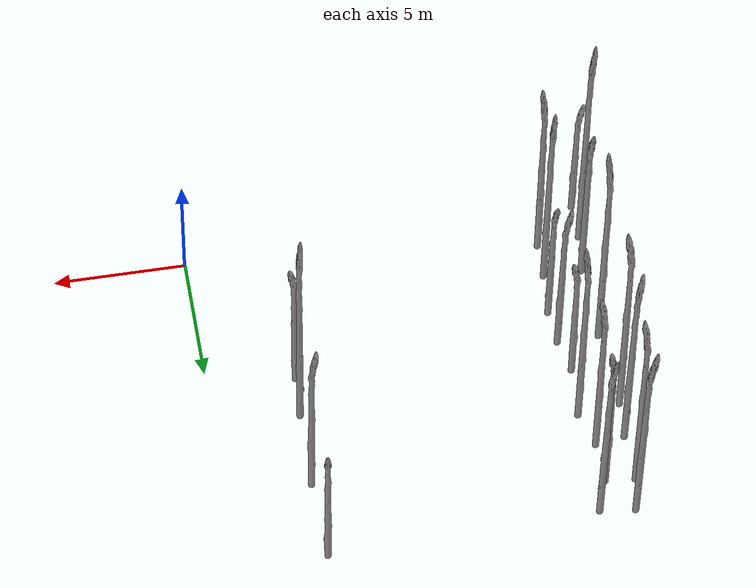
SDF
<sdf version="1.6">
 <world name="default">
  <model name="asparagus_43">
   <pose>-3.2419 5.9099 0 0 -0 0.706755</pose>
   <static>1</static>
   <link name="asparagus_43">
    <visual name="visual">
     <geometry>
      <mesh><uri>model://Asparagus/meshes/asparagus.obj</uri><scale>0.3 0.3 0.356486</scale></mesh>
     </geometry>
    </visual>
    <collision name="collision">
     <geometry>
      <mesh><uri>model://Asparagus/meshes/asparagus.obj</uri><scale>0.3 0.3 0.356486</scale></mesh>
     </geometry>
    </collision>
   </link>
  </model>
  <model name="asparagus_46">
   <pose>-3.25257 7.49353 0 0 -0 -1.967</pose>
   <static>1</static>
   <link name="asparagus_46">
    <visual name="visual">
     <geometry>
      <mesh><uri>model://Asparagus/meshes/asparagus.obj</uri><scale>0.3 0.3 0.529041</scale></mesh>
     </geometry>
    </visual>
    <collision name="collision">
     <geometry>
      <mesh><uri>model://Asparagus/meshes/asparagus.obj</uri><scale>0.3 0.3 0.529041</scale></mesh>
     </geometry>
    </collision>
   </link>
  </model>
  <model name="asparagus_52">
   <pose>-3.22845 10.5608 0 0 -0 -2.63449</pose>
   <static>1</static>
   <link name="asparagus_52">
    <visual name="visual">
     <geometry>
      <mesh><uri>model://Asparagus/meshes/asparagus.obj</uri><scale>0.3 0.3 0.416963</scale></mesh>
     </geometry>
    </visual>
    <collision name="collision">
     <geometry>
      <mesh><uri>model://Asparagus/meshes/asparagus.obj</uri><scale>0.3 0.3 0.416963</scale></mesh>
     </geometry>
    </collision>
   </link>
  </model>
  <model name="asparagus_58">
   <pose>-3.23287 13.7624 0 0 -0 1.40347</pose>
   <static>1</static>
   <link name="asparagus_58">
    <visual name="visual">
     <geometry>
      <mesh><uri>model://Asparagus/meshes/asparagus.obj</uri><scale>0.3 0.3 0.341846</scale></mesh>
     </geometry>
    </visual>
    <collision name="collision">
     <geometry>
      <mesh><uri>model://Asparagus/meshes/asparagus.obj</uri><scale>0.3 0.3 0.341846</scale></mesh>
     </geometry>
    </collision>
   </link>
  </model>
  <model name="asparagus_150">
   <pose>-15.0872 -0.25411 0 0 -0 -2.63357</pose>
   <static>1</static>
   <link name="asparagus_150">
    <visual name="visual">
     <geometry>
      <mesh><uri>model://Asparagus/meshes/asparagus.obj</uri><scale>0.3 0.3 0.308868</scale></mesh>
     </geometry>
    </visual>
    <collision name="collision">
     <geometry>
      <mesh><uri>model://Asparagus/meshes/asparagus.obj</uri><scale>0.3 0.3 0.308868</scale></mesh>
     </geometry>
    </collision>
   </link>
  </model>
  <model name="asparagus_153">
   <pose>-15.0503 1.22201 0 0 -0 -2.25983</pose>
   <static>1</static>
   <link name="asparagus_153">
    <visual name="visual">
     <geometry>
      <mesh><uri>model://Asparagus/meshes/asparagus.obj</uri><scale>0.3 0.3 0.56606</scale></mesh>
     </geometry>
    </visual>
    <collision name="collision">
     <geometry>
      <mesh><uri>model://Asparagus/meshes/asparagus.obj</uri><scale>0.3 0.3 0.56606</scale></mesh>
     </geometry>
    </collision>
   </link>
  </model>
  <model name="asparagus_156">
   <pose>-14.7927 2.90177 0 0 -0 1.74115</pose>
   <static>1</static>
   <link name="asparagus_156">
    <visual name="visual">
     <geometry>
      <mesh><uri>model://Asparagus/meshes/asparagus.obj</uri><scale>0.3 0.3 0.434392</scale></mesh>
     </geometry>
    </visual>
    <collision name="collision">
     <geometry>
      <mesh><uri>model://Asparagus/meshes/asparagus.obj</uri><scale>0.3 0.3 0.434392</scale></mesh>
     </geometry>
    </collision>
   </link>
  </model>
  <model name="asparagus_162">
   <pose>-14.8088 5.79075 0 0 -0 -1.02521</pose>
   <static>1</static>
   <link name="asparagus_162">
    <visual name="visual">
     <geometry>
      <mesh><uri>model://Asparagus/meshes/asparagus.obj</uri><scale>0.3 0.3 0.551133</scale></mesh>
     </geometry>
    </visual>
    <collision name="collision">
     <geometry>
      <mesh><uri>model://Asparagus/meshes/asparagus.obj</uri><scale>0.3 0.3 0.551133</scale></mesh>
     </geometry>
    </collision>
   </link>
  </model>
  <model name="asparagus_168">
   <pose>-14.9379 8.97547 0 0 -0 -0.105695</pose>
   <static>1</static>
   <link name="asparagus_168">
    <visual name="visual">
     <geometry>
      <mesh><uri>model://Asparagus/meshes/asparagus.obj</uri><scale>0.3 0.3 0.533711</scale></mesh>
     </geometry>
    </visual>
    <collision name="collision">
     <geometry>
      <mesh><uri>model://Asparagus/meshes/asparagus.obj</uri><scale>0.3 0.3 0.533711</scale></mesh>
     </geometry>
    </collision>
   </link>
  </model>
  <model name="asparagus_171">
   <pose>-14.9772 10.3811 0 0 -0 -2.39634</pose>
   <static>1</static>
   <link name="asparagus_171">
    <visual name="visual">
     <geometry>
      <mesh><uri>model://Asparagus/meshes/asparagus.obj</uri><scale>0.3 0.3 0.499651</scale></mesh>
     </geometry>
    </visual>
    <collision name="collision">
     <geometry>
      <mesh><uri>model://Asparagus/meshes/asparagus.obj</uri><scale>0.3 0.3 0.499651</scale></mesh>
     </geometry>
    </collision>
   </link>
  </model>
  <model name="asparagus_174">
   <pose>-14.8852 12.2614 0 0 -0 -0.722645</pose>
   <static>1</static>
   <link name="asparagus_174">
    <visual name="visual">
     <geometry>
      <mesh><uri>model://Asparagus/meshes/asparagus.obj</uri><scale>0.3 0.3 0.495336</scale></mesh>
     </geometry>
    </visual>
    <collision name="collision">
     <geometry>
      <mesh><uri>model://Asparagus/meshes/asparagus.obj</uri><scale>0.3 0.3 0.495336</scale></mesh>
     </geometry>
    </collision>
   </link>
  </model>
  <model name="asparagus_177">
   <pose>-14.7765 13.6336 0 0 -0 -3.06426</pose>
   <static>1</static>
   <link name="asparagus_177">
    <visual name="visual">
     <geometry>
      <mesh><uri>model://Asparagus/meshes/asparagus.obj</uri><scale>0.3 0.3 0.496499</scale></mesh>
     </geometry>
    </visual>
    <collision name="collision">
     <geometry>
      <mesh><uri>model://Asparagus/meshes/asparagus.obj</uri><scale>0.3 0.3 0.496499</scale></mesh>
     </geometry>
    </collision>
   </link>
  </model>
  <model name="asparagus_213">
   <pose>-13.3412 1.33095 0 0 -0 -1.10198</pose>
   <static>1</static>
   <link name="asparagus_213">
    <visual name="visual">
     <geometry>
      <mesh><uri>model://Asparagus/meshes/asparagus.obj</uri><scale>0.3 0.3 0.465997</scale></mesh>
     </geometry>
    </visual>
    <collision name="collision">
     <geometry>
      <mesh><uri>model://Asparagus/meshes/asparagus.obj</uri><scale>0.3 0.3 0.465997</scale></mesh>
     </geometry>
    </collision>
   </link>
  </model>
  <model name="asparagus_216">
   <pose>-13.3738 2.75197 0 0 -0 -2.03186</pose>
   <static>1</static>
   <link name="asparagus_216">
    <visual name="visual">
     <geometry>
      <mesh><uri>model://Asparagus/meshes/asparagus.obj</uri><scale>0.3 0.3 0.483446</scale></mesh>
     </geometry>
    </visual>
    <collision name="collision">
     <geometry>
      <mesh><uri>model://Asparagus/meshes/asparagus.obj</uri><scale>0.3 0.3 0.483446</scale></mesh>
     </geometry>
    </collision>
   </link>
  </model>
  <model name="asparagus_219">
   <pose>-13.2072 4.54722 0 0 -0 1.8731</pose>
   <static>1</static>
   <link name="asparagus_219">
    <visual name="visual">
     <geometry>
      <mesh><uri>model://Asparagus/meshes/asparagus.obj</uri><scale>0.3 0.3 0.343573</scale></mesh>
     </geometry>
    </visual>
    <collision name="collision">
     <geometry>
      <mesh><uri>model://Asparagus/meshes/asparagus.obj</uri><scale>0.3 0.3 0.343573</scale></mesh>
     </geometry>
    </collision>
   </link>
  </model>
  <model name="asparagus_222">
   <pose>-13.3527 5.84621 0 0 -0 -2.76926</pose>
   <static>1</static>
   <link name="asparagus_222">
    <visual name="visual">
     <geometry>
      <mesh><uri>model://Asparagus/meshes/asparagus.obj</uri><scale>0.3 0.3 0.409107</scale></mesh>
     </geometry>
    </visual>
    <collision name="collision">
     <geometry>
      <mesh><uri>model://Asparagus/meshes/asparagus.obj</uri><scale>0.3 0.3 0.409107</scale></mesh>
     </geometry>
    </collision>
   </link>
  </model>
  <model name="asparagus_225">
   <pose>-13.4798 7.20478 0 0 -0 0.399653</pose>
   <static>1</static>
   <link name="asparagus_225">
    <visual name="visual">
     <geometry>
      <mesh><uri>model://Asparagus/meshes/asparagus.obj</uri><scale>0.3 0.3 0.345905</scale></mesh>
     </geometry>
    </visual>
    <collision name="collision">
     <geometry>
      <mesh><uri>model://Asparagus/meshes/asparagus.obj</uri><scale>0.3 0.3 0.345905</scale></mesh>
     </geometry>
    </collision>
   </link>
  </model>
  <model name="asparagus_228">
   <pose>-13.371 9.14753 0 0 -0 -1.06446</pose>
   <static>1</static>
   <link name="asparagus_228">
    <visual name="visual">
     <geometry>
      <mesh><uri>model://Asparagus/meshes/asparagus.obj</uri><scale>0.3 0.3 0.509406</scale></mesh>
     </geometry>
    </visual>
    <collision name="collision">
     <geometry>
      <mesh><uri>model://Asparagus/meshes/asparagus.obj</uri><scale>0.3 0.3 0.509406</scale></mesh>
     </geometry>
    </collision>
   </link>
  </model>
  <model name="asparagus_231">
   <pose>-13.7388 10.5445 0 0 -0 -0.696445</pose>
   <static>1</static>
   <link name="asparagus_231">
    <visual name="visual">
     <geometry>
      <mesh><uri>model://Asparagus/meshes/asparagus.obj</uri><scale>0.3 0.3 0.454269</scale></mesh>
     </geometry>
    </visual>
    <collision name="collision">
     <geometry>
      <mesh><uri>model://Asparagus/meshes/asparagus.obj</uri><scale>0.3 0.3 0.454269</scale></mesh>
     </geometry>
    </collision>
   </link>
  </model>
  <model name="asparagus_234">
   <pose>-13.7572 12.2511 0 0 -0 0.578924</pose>
   <static>1</static>
   <link name="asparagus_234">
    <visual name="visual">
     <geometry>
      <mesh><uri>model://Asparagus/meshes/asparagus.obj</uri><scale>0.3 0.3 0.422451</scale></mesh>
     </geometry>
    </visual>
    <collision name="collision">
     <geometry>
      <mesh><uri>model://Asparagus/meshes/asparagus.obj</uri><scale>0.3 0.3 0.422451</scale></mesh>
     </geometry>
    </collision>
   </link>
  </model>
  <model name="asparagus_237">
   <pose>-13.4203 13.5412 0 0 -0 2.18244</pose>
   <static>1</static>
   <link name="asparagus_237">
    <visual name="visual">
     <geometry>
      <mesh><uri>model://Asparagus/meshes/asparagus.obj</uri><scale>0.3 0.3 0.493397</scale></mesh>
     </geometry>
    </visual>
    <collision name="collision">
     <geometry>
      <mesh><uri>model://Asparagus/meshes/asparagus.obj</uri><scale>0.3 0.3 0.493397</scale></mesh>
     </geometry>
    </collision>
   </link>
  </model>
 </world>
</sdf>
